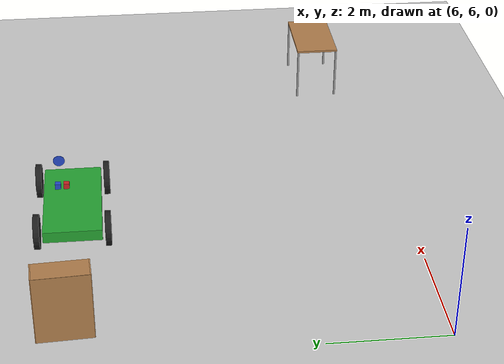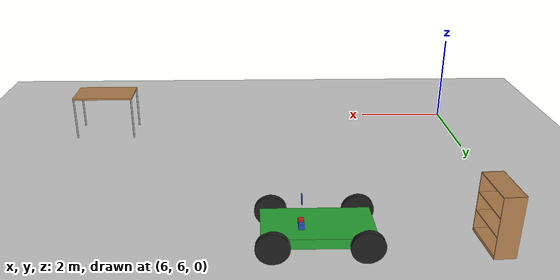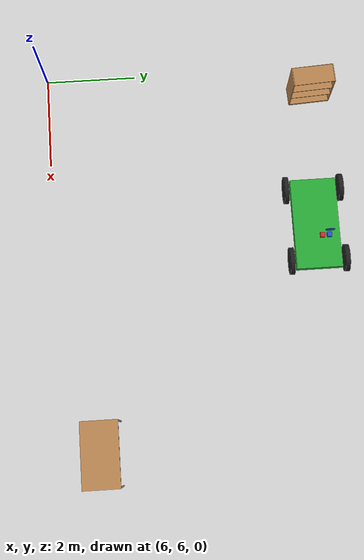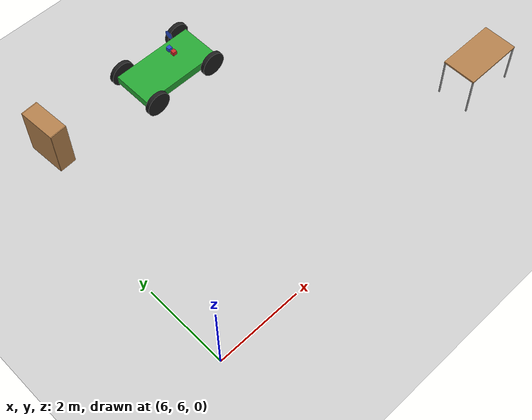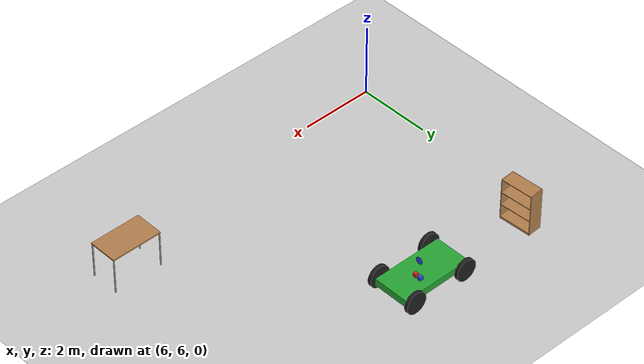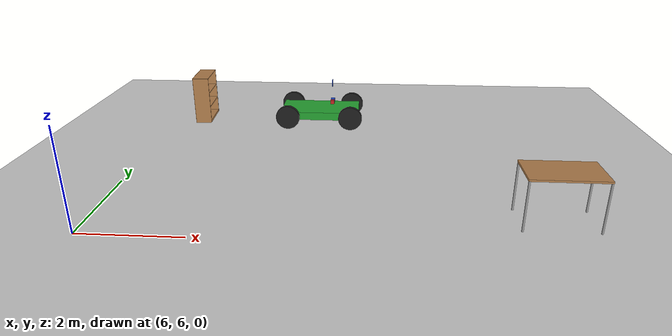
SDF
<sdf version="1.6">
 <world name="default">
  <model name="ground_plane">
   <static>1</static>
   <link name="link">
    <collision name="collision">
     <geometry><plane><normal>0 0 1</normal><size>100 100</size></plane></geometry>
     <surface><friction><ode><mu>100</mu><mu2>50</mu2></ode></friction></surface>
    </collision>
    <visual name="visual">
     <cast_shadows>0</cast_shadows>
     <geometry><plane><normal>0 0 1</normal><size>100 100</size></plane></geometry>
     <material>
      <script><uri>file://media/materials/scripts/gazebo.material</uri><name>Gazebo/Grey</name></script>
     </material>
    </visual>
   </link>
  </model>
  <model name="bookshelf">
   <static>1</static>
   <link name="link">
    <inertial><mass>1</mass></inertial>
    <collision name="back">
     <pose>0 0.005 0.6 0 -0 0</pose>
     <geometry><box><size>0.9 0.01 1.2</size></box></geometry>
    </collision>
    <visual name="visual1">
     <pose>0 0.005 0.6 0 -0 0</pose>
     <geometry><box><size>0.9 0.01 1.2</size></box></geometry>
     <material>
      <script><uri>file://media/materials/scripts/gazebo.material</uri><name>Gazebo/Wood</name></script>
     </material>
    </visual>
    <collision name="left_side">
     <pose>0.45 -0.195 0.6 0 -0 0</pose>
     <geometry><box><size>0.02 0.4 1.2</size></box></geometry>
    </collision>
    <visual name="visual2">
     <pose>0.45 -0.195 0.6 0 -0 0</pose>
     <geometry><box><size>0.02 0.4 1.2</size></box></geometry>
     <material>
      <script><uri>file://media/materials/scripts/gazebo.material</uri><name>Gazebo/Wood</name></script>
     </material>
    </visual>
    <collision name="right_side">
     <pose>-0.45 -0.195 0.6 0 -0 0</pose>
     <geometry><box><size>0.02 0.4 1.2</size></box></geometry>
    </collision>
    <visual name="visual3">
     <pose>-0.45 -0.195 0.6 0 -0 0</pose>
     <geometry><box><size>0.02 0.4 1.2</size></box></geometry>
     <material>
      <script><uri>file://media/materials/scripts/gazebo.material</uri><name>Gazebo/Wood</name></script>
     </material>
    </visual>
    <collision name="bottom">
     <pose>0 -0.195 0.03 0 -0 0</pose>
     <geometry><box><size>0.88 0.4 0.06</size></box></geometry>
    </collision>
    <visual name="visual4">
     <pose>0 -0.195 0.03 0 -0 0</pose>
     <geometry><box><size>0.88 0.4 0.06</size></box></geometry>
     <material>
      <script><uri>file://media/materials/scripts/gazebo.material</uri><name>Gazebo/Wood</name></script>
     </material>
    </visual>
    <collision name="top">
     <pose>0 -0.195 1.19 0 -0 0</pose>
     <geometry><box><size>0.88 0.4 0.02</size></box></geometry>
    </collision>
    <visual name="visual5">
     <pose>0 -0.195 1.19 0 -0 0</pose>
     <geometry><box><size>0.88 0.4 0.02</size></box></geometry>
     <material>
      <script><uri>file://media/materials/scripts/gazebo.material</uri><name>Gazebo/Wood</name></script>
     </material>
    </visual>
    <collision name="low_shelf">
     <pose>0 -0.195 0.43 0 -0 0</pose>
     <geometry><box><size>0.88 0.4 0.02</size></box></geometry>
    </collision>
    <visual name="visual6">
     <pose>0 -0.195 0.43 0 -0 0</pose>
     <geometry><box><size>0.88 0.4 0.02</size></box></geometry>
     <material>
      <script><uri>file://media/materials/scripts/gazebo.material</uri><name>Gazebo/Wood</name></script>
     </material>
    </visual>
    <collision name="high_shelf">
     <pose>0 -0.195 0.8 0 -0 0</pose>
     <geometry><box><size>0.88 0.4 0.02</size></box></geometry>
    </collision>
    <visual name="visual7">
     <pose>0 -0.195 0.8 0 -0 0</pose>
     <geometry><box><size>0.88 0.4 0.02</size></box></geometry>
     <material>
      <script><uri>file://media/materials/scripts/gazebo.material</uri><name>Gazebo/Wood</name></script>
     </material>
    </visual>
   </link>
   <pose>6.47713 11.9401 0 0 -0 1.62858</pose>
  </model>
  <model name="table">
   <static>0</static>
   <link name="link">
    <collision name="surface">
     <pose>0 0 1 0 -0 0</pose>
     <geometry><box><size>1.5 0.8 0.03</size></box></geometry>
     <surface><friction><ode><mu>0.6</mu><mu2>0.6</mu2></ode></friction></surface>
    </collision>
    <visual name="visual1">
     <pose>0 0 1 0 -0 0</pose>
     <geometry><box><size>1.4 0.8 0.04</size></box></geometry>
     <material>
      <script><uri>file://media/materials/scripts/gazebo.material</uri><name>Gazebo/Wood</name></script>
     </material>
    </visual>
    <collision name="front_left_leg">
     <pose>0.68 0.38 0.5 0 -0 0</pose>
     <geometry><cylinder><radius>0.02</radius><length>1</length></cylinder></geometry>
    </collision>
    <visual name="front_left_leg">
     <pose>0.68 0.38 0.5 0 -0 0</pose>
     <geometry><cylinder><radius>0.02</radius><length>1</length></cylinder></geometry>
     <material>
      <script><uri>file://media/materials/scripts/gazebo.material</uri><name>Gazebo/Grey</name></script>
     </material>
    </visual>
    <collision name="front_right_leg">
     <pose>0.68 -0.38 0.5 0 -0 0</pose>
     <geometry><cylinder><radius>0.02</radius><length>1</length></cylinder></geometry>
    </collision>
    <visual name="front_right_leg">
     <pose>0.68 -0.38 0.5 0 -0 0</pose>
     <geometry><cylinder><radius>0.02</radius><length>1</length></cylinder></geometry>
     <material>
      <script><uri>file://media/materials/scripts/gazebo.material</uri><name>Gazebo/Grey</name></script>
     </material>
    </visual>
    <collision name="back_right_leg">
     <pose>-0.68 -0.38 0.5 0 -0 0</pose>
     <geometry><cylinder><radius>0.02</radius><length>1</length></cylinder></geometry>
    </collision>
    <visual name="back_right_leg">
     <pose>-0.68 -0.38 0.5 0 -0 0</pose>
     <geometry><cylinder><radius>0.02</radius><length>1</length></cylinder></geometry>
     <material>
      <script><uri>file://media/materials/scripts/gazebo.material</uri><name>Gazebo/Grey</name></script>
     </material>
    </visual>
    <collision name="back_left_leg">
     <pose>-0.68 0.38 0.5 0 -0 0</pose>
     <geometry><cylinder><radius>0.02</radius><length>1</length></cylinder></geometry>
    </collision>
    <visual name="back_left_leg">
     <pose>-0.68 0.38 0.5 0 -0 0</pose>
     <geometry><cylinder><radius>0.02</radius><length>1</length></cylinder></geometry>
     <material>
      <script><uri>file://media/materials/scripts/gazebo.material</uri><name>Gazebo/Grey</name></script>
     </material>
    </visual>
    <inertial>
     <inertia><ixx>1</ixx><ixy>0</ixy><ixz>0</ixz><iyy>1</iyy><iyz>0</iyz><izz>1</izz></inertia>
     <mass>1</mass>
    </inertial>
   </link>
   <pose>14.491 6.92356 -2e-06 0 -0 0</pose>
  </model>
  <model name="car_0">
   <link name="chassis">
    <pose>0 0 0.3 0 -0 0</pose>
    <collision name="collision"><geometry><box><size>2 1 0.2</size></box></geometry></collision>
    <visual name="visual">
     <geometry><box><size>2 1 0.2</size></box></geometry>
     <material>
      <script><uri>file://media/materials/scripts/gazebo.material</uri><name>Gazebo/Green</name></script>
     </material>
    </visual>
    <inertial>
     <inertia><ixx>1</ixx><ixy>0</ixy><ixz>0</ixz><iyy>1</iyy><iyz>0</iyz><izz>1</izz></inertia>
     <mass>1</mass>
    </inertial>
   </link>
   <link name="front_left_wheel">
    <pose>0.8 0.6 0.3 -0 1.5707 1.5707</pose>
    <collision name="collision">
     <geometry><cylinder><radius>0.3</radius><length>0.1</length></cylinder></geometry>
    </collision>
    <visual name="visual">
     <geometry><cylinder><radius>0.3</radius><length>0.1</length></cylinder></geometry>
     <material>
      <script><uri>file://media/materials/scripts/gazebo.material</uri><name>Gazebo/Black</name></script>
     </material>
    </visual>
    <inertial>
     <inertia><ixx>1</ixx><ixy>0</ixy><ixz>0</ixz><iyy>1</iyy><iyz>0</iyz><izz>1</izz></inertia>
     <mass>1</mass>
    </inertial>
   </link>
   <link name="front_right_wheel">
    <pose>0.8 -0.6 0.3 -0 1.5707 1.5707</pose>
    <collision name="collision">
     <geometry><cylinder><radius>0.3</radius><length>0.1</length></cylinder></geometry>
    </collision>
    <visual name="visual">
     <geometry><cylinder><radius>0.3</radius><length>0.1</length></cylinder></geometry>
     <material>
      <script><uri>file://media/materials/scripts/gazebo.material</uri><name>Gazebo/Black</name></script>
     </material>
    </visual>
    <inertial>
     <inertia><ixx>1</ixx><ixy>0</ixy><ixz>0</ixz><iyy>1</iyy><iyz>0</iyz><izz>1</izz></inertia>
     <mass>1</mass>
    </inertial>
   </link>
   <link name="back_right_wheel">
    <pose>-0.8 -0.6 0.3 -0 1.5707 1.5707</pose>
    <collision name="collision">
     <geometry><cylinder><radius>0.3</radius><length>0.1</length></cylinder></geometry>
    </collision>
    <visual name="visual">
     <geometry><cylinder><radius>0.3</radius><length>0.1</length></cylinder></geometry>
     <material>
      <script><uri>file://media/materials/scripts/gazebo.material</uri><name>Gazebo/Black</name></script>
     </material>
    </visual>
    <inertial>
     <inertia><ixx>1</ixx><ixy>0</ixy><ixz>0</ixz><iyy>1</iyy><iyz>0</iyz><izz>1</izz></inertia>
     <mass>1</mass>
    </inertial>
   </link>
   <link name="back_left_wheel">
    <pose>-0.8 0.6 0.3 -0 1.5707 1.5707</pose>
    <collision name="collision">
     <geometry><cylinder><radius>0.3</radius><length>0.1</length></cylinder></geometry>
    </collision>
    <visual name="visual">
     <geometry><cylinder><radius>0.3</radius><length>0.1</length></cylinder></geometry>
     <material>
      <script><uri>file://media/materials/scripts/gazebo.material</uri><name>Gazebo/Black</name></script>
     </material>
    </visual>
    <inertial>
     <inertia><ixx>1</ixx><ixy>0</ixy><ixz>0</ixz><iyy>1</iyy><iyz>0</iyz><izz>1</izz></inertia>
     <mass>1</mass>
    </inertial>
   </link>
   <link name="gas_pedal">
    <pose>0.3 0.1 0.5 0 -0 0</pose>
    <collision name="collision"><geometry><box><size>0.1 0.1 0.1</size></box></geometry></collision>
    <visual name="visual">
     <geometry><box><size>0.1 0.1 0.1</size></box></geometry>
     <material>
      <script><uri>file://media/materials/scripts/gazebo.material</uri><name>Gazebo/Red</name></script>
     </material>
    </visual>
    <inertial>
     <inertia><ixx>1</ixx><ixy>0</ixy><ixz>0</ixz><iyy>1</iyy><iyz>0</iyz><izz>1</izz></inertia>
     <mass>1</mass>
    </inertial>
   </link>
   <link name="brake_pedal">
    <pose>0.3 0.25 0.5 0 -0 0</pose>
    <collision name="collision"><geometry><box><size>0.1 0.1 0.1</size></box></geometry></collision>
    <visual name="visual">
     <geometry><box><size>0.1 0.1 0.1</size></box></geometry>
     <material>
      <script><uri>file://media/materials/scripts/gazebo.material</uri><name>Gazebo/Blue</name></script>
     </material>
    </visual>
    <inertial>
     <inertia><ixx>1</ixx><ixy>0</ixy><ixz>0</ixz><iyy>1</iyy><iyz>0</iyz><izz>1</izz></inertia>
     <mass>1</mass>
    </inertial>
   </link>
   <link name="steering_wheel">
    <pose>0.3 0.2 1 0 1.5707 0</pose>
    <collision name="collision">
     <geometry><cylinder><radius>0.1</radius><length>0.01</length></cylinder></geometry>
    </collision>
    <visual name="visual">
     <geometry><cylinder><radius>0.1</radius><length>0.01</length></cylinder></geometry>
     <material>
      <script><uri>file://media/materials/scripts/gazebo.material</uri><name>Gazebo/Blue</name></script>
     </material>
    </visual>
    <inertial>
     <inertia><ixx>1</ixx><ixy>0</ixy><ixz>0</ixz><iyy>1</iyy><iyz>0</iyz><izz>1</izz></inertia>
     <mass>1</mass>
    </inertial>
   </link>
   <joint name="gas_joint" type="prismatic">
    <parent>chassis</parent>
    <child>gas_pedal</child>
    <axis>
     <xyz>1 0 0</xyz>
     <limit><lower>0</lower><upper>0.2</upper></limit>
     <use_parent_model_frame>1</use_parent_model_frame>
     <dynamics><spring_reference>0</spring_reference><spring_stiffness>0</spring_stiffness></dynamics>
    </axis>
   </joint>
   <joint name="brake_joint" type="prismatic">
    <parent>chassis</parent>
    <child>brake_pedal</child>
    <axis>
     <xyz>1 0 0</xyz>
     <limit><lower>0</lower><upper>0.2</upper></limit>
     <use_parent_model_frame>1</use_parent_model_frame>
     <dynamics><spring_reference>0</spring_reference><spring_stiffness>0</spring_stiffness></dynamics>
    </axis>
   </joint>
   <joint name="steering_joint" type="revolute">
    <parent>chassis</parent>
    <child>steering_wheel</child>
    <axis>
     <xyz>1 0 0</xyz>
     <limit><lower>-7.853</lower><upper>7.853</upper></limit>
     <use_parent_model_frame>1</use_parent_model_frame>
     <dynamics><spring_reference>0</spring_reference><spring_stiffness>0</spring_stiffness></dynamics>
    </axis>
   </joint>
   <joint name="front_left_joint" type="revolute2">
    <parent>chassis</parent>
    <child>front_left_wheel</child>
    <axis>
     <xyz>0 0 1</xyz>
     <limit><lower>8.66016e-06</lower><upper>8.66016e-06</upper></limit>
     <use_parent_model_frame>1</use_parent_model_frame>
     <dynamics><spring_reference>0</spring_reference><spring_stiffness>0</spring_stiffness></dynamics>
    </axis>
    <axis2>
     <xyz>0 1 0</xyz>
     <use_parent_model_frame>1</use_parent_model_frame>
     <dynamics><spring_reference>0</spring_reference><spring_stiffness>0</spring_stiffness></dynamics>
    </axis2>
    <physics><ode><limit><cfm>0</cfm><erp>0.9</erp></limit></ode></physics>
   </joint>
   <joint name="front_right_joint" type="revolute2">
    <parent>chassis</parent>
    <child>front_right_wheel</child>
    <axis>
     <xyz>0 0 1</xyz>
     <limit><lower>8.66016e-06</lower><upper>8.66016e-06</upper></limit>
     <use_parent_model_frame>1</use_parent_model_frame>
     <dynamics><spring_reference>0</spring_reference><spring_stiffness>0</spring_stiffness></dynamics>
    </axis>
    <axis2>
     <xyz>0 1 0</xyz>
     <use_parent_model_frame>1</use_parent_model_frame>
     <dynamics><spring_reference>0</spring_reference><spring_stiffness>0</spring_stiffness></dynamics>
    </axis2>
    <physics><ode><limit><cfm>0</cfm><erp>0.9</erp></limit></ode></physics>
   </joint>
   <joint name="back_right_joint" type="revolute2">
    <parent>chassis</parent>
    <child>back_right_wheel</child>
    <axis>
     <xyz>0 0 1</xyz>
     <limit><lower>0</lower><upper>0</upper></limit>
     <use_parent_model_frame>1</use_parent_model_frame>
     <dynamics><spring_reference>0</spring_reference><spring_stiffness>0</spring_stiffness></dynamics>
    </axis>
    <axis2>
     <xyz>0 1 0</xyz>
     <use_parent_model_frame>1</use_parent_model_frame>
     <dynamics><spring_reference>0</spring_reference><spring_stiffness>0</spring_stiffness></dynamics>
    </axis2>
    <physics><ode><limit><cfm>0</cfm><erp>0.9</erp></limit></ode></physics>
   </joint>
   <joint name="back_left_joint" type="revolute2">
    <parent>chassis</parent>
    <child>back_left_wheel</child>
    <axis>
     <xyz>0 0 1</xyz>
     <limit><lower>0</lower><upper>0</upper></limit>
     <use_parent_model_frame>1</use_parent_model_frame>
     <dynamics><spring_reference>0</spring_reference><spring_stiffness>0</spring_stiffness></dynamics>
    </axis>
    <axis2>
     <xyz>0 1 0</xyz>
     <use_parent_model_frame>1</use_parent_model_frame>
     <dynamics><spring_reference>0</spring_reference><spring_stiffness>0</spring_stiffness></dynamics>
    </axis2>
    <physics><ode><limit><cfm>0</cfm><erp>0.9</erp></limit></ode></physics>
   </joint>
   <plugin name="vehicle" filename="libVehiclePlugin.so">
    <front_left>front_left_joint</front_left>
    <front_right>front_right_joint</front_right>
    <back_left>back_left_joint</back_left>
    <back_right>back_right_joint</back_right>
    <gas>gas_joint</gas>
    <brake>brake_joint</brake>
    <steering>steering_joint</steering>
    <front_power>10</front_power>
    <rear_power>10</rear_power>
    <tire_angle_range>0.5</tire_angle_range>
    <max_speed>10</max_speed>
    <aero_load>0.1</aero_load>
   </plugin>
   <pose>9.79224 11.8347 -0.002615 -0.000273 0.000907 0.000903</pose>
  </model>
 </world>
</sdf>
